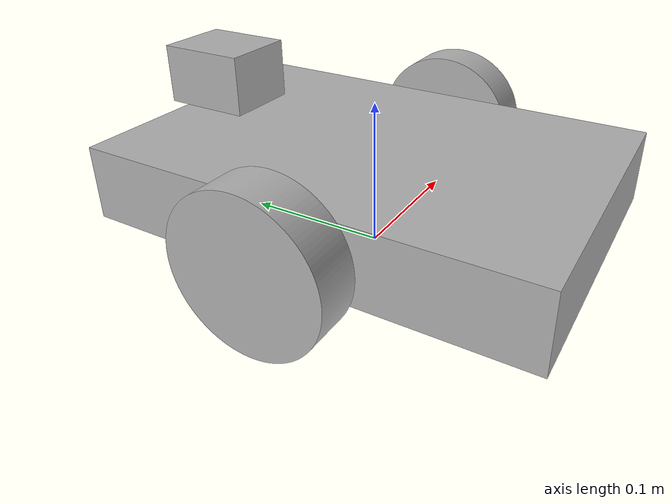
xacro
<?xml version="1.0" ?>
<robot name="perceptor" xmlns:xacro="http://www.ros.org/wiki/xacro">

<xacro:include filename="$(find perceptor_description)/urdf/materials.xacro" />
<xacro:include filename="$(find perceptor_description)/urdf/robot.trans" />
<xacro:include filename="$(find perceptor_description)/urdf/robot.gazebo" />
<link name="base_link">
  <inertial>
    <origin xyz="1.3607801581146301e-14 6.245036549783648e-05 0.04985211406503635" rpy="0 0 0"/>
    <mass value="23.69385876359562"/>
    <inertia ixx="0.183403" iyy="0.08382" izz="0.257107" ixy="-0.0" iyz="-4.1e-05" ixz="0.0"/>
  </inertial>
  <visual>
    <origin xyz="0 0 0" rpy="0 0 0"/>
    <geometry>
      <mesh filename="file://$(find perceptor_description)/meshes/base_link.stl" scale="0.001 0.001 0.001"/>
    </geometry>
    <material name="silver"/>
  </visual>
  <collision>
    <origin xyz="0 0 0" rpy="0 0 0"/>
    <geometry>
      <mesh filename="file://$(find perceptor_description)/meshes/base_link.stl" scale="0.001 0.001 0.001"/>
    </geometry>
  </collision>
</link>

<link name="depth_cam">
  <inertial>
    <origin xyz="1.0892620139202336e-13 2.7755575615628914e-17 0.04689061698525029" rpy="0 0 0"/>
    <mass value="0.9469323004661316"/>
    <inertia ixx="0.00041" iyy="0.000324" izz="0.000479" ixy="0.0" iyz="0.0" ixz="-0.0"/>
  </inertial>
  <visual>
    <origin xyz="-0.0 -0.12 -0.055" rpy="0 0 0"/>
    <geometry>
      <mesh filename="file://$(find perceptor_description)/meshes/depth_cam.stl" scale="0.001 0.001 0.001"/>
    </geometry>
    <material name="silver"/>
  </visual>
  <collision>
    <origin xyz="-0.0 -0.12 -0.055" rpy="0 0 0"/>
    <geometry>
      <mesh filename="file://$(find perceptor_description)/meshes/depth_cam.stl" scale="0.001 0.001 0.001"/>
    </geometry>
  </collision>
</link>

<link name="left_wheel">
  <inertial>
    <origin xyz="-0.01695744680851065 8.881784197001253e-18 0.02499999999995829" rpy="0 0 0"/>
    <mass value="1.8545449752671235"/>
    <inertia ixx="0.002312" iyy="0.001296" izz="0.001296" ixy="0.0" iyz="-0.0" ixz="-0.0"/>
  </inertial>
  <visual>
    <origin xyz="0.105 -0.0 -0.025" rpy="0 0 0"/>
    <geometry>
      <mesh filename="file://$(find perceptor_description)/meshes/left_wheel.stl" scale="0.001 0.001 0.001"/>
    </geometry>
    <material name="silver"/>
  </visual>
  <collision>
    <origin xyz="0.105 -0.0 -0.025" rpy="0 0 0"/>
    <geometry>
      <mesh filename="file://$(find perceptor_description)/meshes/left_wheel.stl" scale="0.001 0.001 0.001"/>
    </geometry>
  </collision>
</link>

<link name="right_wheel">
  <inertial>
    <origin xyz="0.01695744680851065 1.7763568394002505e-17 0.025000000000041746" rpy="0 0 0"/>
    <mass value="1.8545449752671235"/>
    <inertia ixx="0.002312" iyy="0.001296" izz="0.001296" ixy="-0.0" iyz="0.0" ixz="-0.0"/>
  </inertial>
  <visual>
    <origin xyz="-0.105 -0.0 -0.025" rpy="0 0 0"/>
    <geometry>
      <mesh filename="file://$(find perceptor_description)/meshes/right_wheel.stl" scale="0.001 0.001 0.001"/>
    </geometry>
    <material name="silver"/>
  </visual>
  <collision>
    <origin xyz="-0.105 -0.0 -0.025" rpy="0 0 0"/>
    <geometry>
      <mesh filename="file://$(find perceptor_description)/meshes/right_wheel.stl" scale="0.001 0.001 0.001"/>
    </geometry>
  </collision>
</link>

<joint name="depth_cam_joint" type="fixed">
  <origin xyz="0.0 0.12 0.055" rpy="0 0 0"/>
  <parent link="base_link"/>
  <child link="depth_cam"/>
</joint>

<joint name="left_joint" type="continuous">
  <origin xyz="-0.105 0.0 0.025" rpy="0 0 0"/>
  <parent link="base_link"/>
  <child link="left_wheel"/>
  <axis xyz="-1.0 0.0 0.0"/>
</joint>

<joint name="right_joint" type="continuous">
  <origin xyz="0.105 0.0 0.025" rpy="0 0 0"/>
  <parent link="base_link"/>
  <child link="right_wheel"/>
  <axis xyz="1.0 0.0 0.0"/>
</joint>

</robot>

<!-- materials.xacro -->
<robot name="perceptor" xmlns:xacro="http://www.ros.org/wiki/xacro" >

<material name="silver">
  <color rgba="0.700 0.700 0.700 1.000"/>
</material>

</robot>

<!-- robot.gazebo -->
<robot name="perceptor" xmlns:xacro="http://www.ros.org/wiki/xacro" >

<xacro:property name="body_color" value="Gazebo/Silver" />

<gazebo>
  <plugin name="control" filename="libgazebo_ros_control.so"/>
</gazebo>
<gazebo reference="base_link">
  <material>${body_color}</material>
  <mu1>0.2</mu1>
  <mu2>0.2</mu2>
  <self_collide>true</self_collide>
  <gravity>true</gravity>
</gazebo>

<gazebo reference="depth_cam">
  <material>${body_color}</material>
  <mu1>0.2</mu1>
  <mu2>0.2</mu2>
  <self_collide>true</self_collide>
</gazebo>

<gazebo reference="left_wheel">
  <material>${body_color}</material>
  <mu1>0.2</mu1>
  <mu2>0.2</mu2>
  <self_collide>true</self_collide>
</gazebo>

<gazebo reference="right_wheel">
  <material>${body_color}</material>
  <mu1>0.2</mu1>
  <mu2>0.2</mu2>
  <self_collide>true</self_collide>
</gazebo>

</robot>
